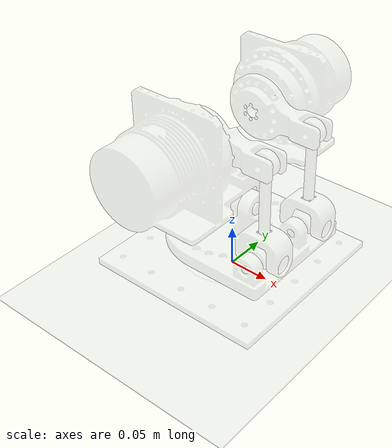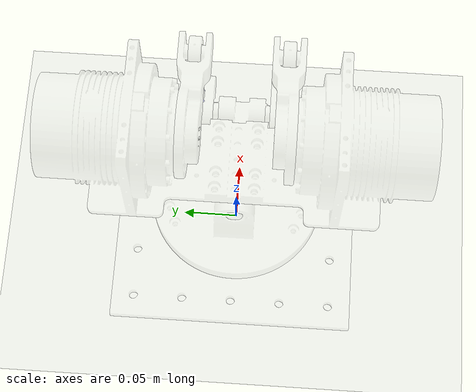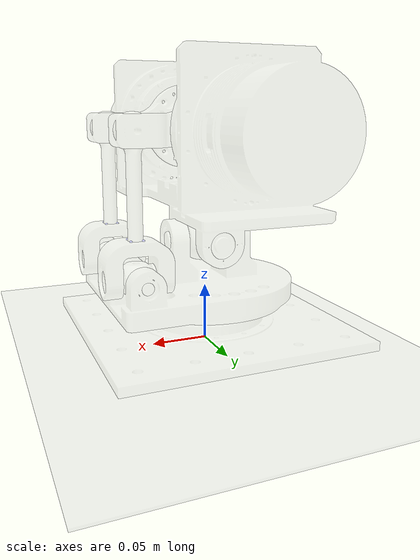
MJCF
<mujoco model="torso_mechanism">

    <compiler meshdir="torso_RSU_stl"/>
    <option gravity="0 0 -9.81" timestep="0.001" integrator="RK4" iterations="500" tolerance="1e-20"/>

    <statistic center="0 0 0.1" extent="1.5"/>

    <default>
        <geom rgba="0.75 0.76 0.78 0.1" solref="0.5 0.5" solimp="0.5 0.5 0.001 5 3"/>
        <mesh scale="0.001 0.001 0.001" />
        <joint damping="0.01"/>
        <site type="sphere" size="0.00125" rgba="0 0 1 0.1"/>
    </default>

    <visual>
        <map force="1" zfar="20	"/>
        <global elevation="-30" azimuth="210" fovy="15"/>
    </visual>

    <asset>
        <texture type="skybox" builtin="gradient" rgb1=".3 .5 .7" rgb2="0.3 0.5 0.7" width="512" height="512"/>
        <texture name="ground plane" type="2d" builtin="checker" mark="edge" width="512" height="512" rgb1=".2 .3 .4" rgb2=".1 .2 .3" markrgb="0.5 0.5 0.5"/>

        <material name="ground plane" texture="ground plane" texrepeat="10 10" texuniform="true" reflectance="0.2"/>

        <mesh name="waist_link" file="waist_link.stl"/>
        <mesh name="base_link" file="base_link.stl"/>
        <mesh name="spider" file="spider.stl"/>
        <mesh name="torso" file="torso.stl"/>
        <mesh name="crank_1" file="crank_1.stl"/>
        <mesh name="crank_2" file="crank_2.stl"/>
        <mesh name="rod_1" file="rod_1.stl"/>
        <mesh name="rod_2" file="rod_2.stl"/>
        <mesh name="s_spider" file="s_spider.stl"/>
    </asset>

    <worldbody>
        <geom name="floor" type="box" size="1 1 0.001" pos="0 0 0" material="ground plane" condim="3"/>
        <light name="spotlight" diffuse="1 1 1" specular="0.8 0.6 0.4" pos="0 0 5"/>
        <light name="top" pos="0 0 5" mode="trackcom" castshadow="false"/>

        <body name="waist_link" euler="0 0 0" pos="0 0 -0.08778">
            <geom name="waist_link" type="mesh" mesh="waist_link"/>

            <body name="base_link" euler="0 0 0" pos="0 0 0.12778">
                <geom name="base_link" type="mesh" mesh="base_link"/>
                <inertial
                    pos="0.011793737 0 0.014036199"
                    mass="1.284"
                    fullinertia="0.0022467812 0.0027628432 0.0045827893 0 -0.000079578252 0"/>
                <joint name="Yaw" type="hinge" pos="0 0 0" axis="0 0 1" range="-180 180" />

                <!-- Main Branch 1 -->
                <body name="spider" euler="0 0 0" pos="0 0 0.054">
                    <geom name="spider" type="mesh" mesh="spider"/>
                    <inertial
                        pos="0 7.7650281e-07 -3.5314178e-05"
                        mass="0.167"
                        diaginertia="0.000065885437 0.000035631377 0.000080152333"/>
                    <joint name="Roll" type="hinge" pos="0 0 0" axis="1 0 0" range="-15 15" />
                    <body name="torso" euler="0 0 0" pos="0 0 0">
                        <geom name="torso" type="mesh" mesh="torso"/>
                        <inertial
                            pos="0 0 0.086551020"
                            mass="4.56"
                            fullinertia="0.054997148 0.0073533371 0.053090282 -0.0000043882031 0 0"/>
                        <joint name="Pitch" type="hinge" pos="0 0 0" axis="0 1 0" range="-25 25" />
                        <body name="crank1" euler="0 0 0" pos="0 0.04 0.095 ">
                            <geom name="crank1" type="mesh" mesh="crank_1" />
                            <inertial
                                pos="0.029180884 0.00027909838 0"
                                mass="0.139"
                                fullinertia="0.000035565424 0.00018429955 0.00016095719 -0.000000095556741 0 0"/>
                            <joint name="Joint_18" type="hinge" pos="0 0 0" axis="0 1 0" />
                            <body name="rod1" euler="0 0 0" pos="0.075 0 0" >
                                <geom name="rod1" type="mesh" mesh="rod_1"  contype="0" conaffinity="0"/>
                                <inertial
                                    pos="0 0.000074522315 -0.032188469"
                                    mass="0.0306"
                                    fullinertia="0.000024255706 0.000024864733 0.0000011656266 0 0 -0.000000073510536"/>
                                <joint name="Spherical_Joint_1" type="ball" />
                                <site name="a1" pos="0.005 0.005 -0.084"/>
                                <site name="b1" pos="-0.005 0.005 -0.084"/>
                                <site name="c1" pos="-0.005 -0.005 -0.084"/>
                                <site name="d1" pos="0.005 -0.005 -0.084"/>
                            </body>
                        </body>
                        <body name="crank2" euler="0 0 0" pos="0 -0.04 0.095 ">
                            <geom name="crank2" type="mesh" mesh="crank_2" />
                            <inertial
                                pos="0.029180884 0.00027909838 0"
                                mass="0.139"
                                fullinertia="0.000035565424 0.00018429955 0.00016095719 -0.000000095556741 0 0"/>
                            <joint name="Joint_19" type="hinge" pos="0 0 0" axis="0 1 0" />
                            <body name="rod2" euler="0 0 0" pos="0.075 0 0">
                                <geom name="rod2" type="mesh" mesh="rod_1"  contype="0" conaffinity="0"/>
                                <inertial
                                    pos="0 0.000074522315 -0.032188469"
                                    mass="0.0306"
                                    fullinertia="0.000024255706 0.000024864733 0.0000011656266 0 0 -0.000000073510536"/>
                                <joint name="Spherical_Joint_2" type="ball" />
                                <site name="a2" pos="0.005 0.005 -0.084"/>
                                <site name="b2" pos="-0.005 0.005 -0.084"/>
                                <site name="c2" pos="-0.005 -0.005 -0.084"/>
                                <site name="d2" pos="0.005 -0.005 -0.084"/>
                            </body>
                        </body>
                    </body>
                </body>

                <!-- Main Branch 2 -->
                <body name="s_spider1" euler="0 0 0" pos="0.075 0.04 0.034">
                    <geom name="s_spider1" type="mesh" mesh="s_spider"/>
                    <inertial
                        pos="0 0 -3.3412167e-05"
                        mass="0.0625"
                        diaginertia="0.0000090956111 0.000010842278 0.000015900370"/>
                    <joint name="UJ1_pitch" type="hinge" pos="0 0 0" axis="0 1 0" />
                    <body name="rod_1" euler="0 0 0" pos="0 0 0">
                        <joint name="UJ1_roll" type="hinge" pos="0 0 0" axis="1 0 0" />
                        <inertial
                            pos="0 0 0.016234461"
                            mass="0.0676"
                            diaginertia="0.000014017289 0.000030081665 0.000026288872"/>
                        <geom name="rod_1" type="mesh" mesh="rod_2" contype="0" conaffinity="0"/>
                        <site name="e1" pos="0.005 0.005 0.031"/>
                        <site name="f1" pos="-0.005 0.005 0.031"/>
                        <site name="g1" pos="-0.005 -0.005 0.031"/>
                        <site name="h1" pos="0.005 -0.005 0.031"/>
                    </body>
                </body>

                <!-- Main Branch 3 -->
                <body name="s_spider2" euler="0 0 0" pos="0.075 -0.04 0.034">
                    <geom name="s_spider2" type="mesh" mesh="s_spider"/>
                    <inertial
                        pos="0 0 -3.3412167e-05"
                        mass="0.0625"
                        diaginertia="0.0000090956111 0.000010842278 0.000015900370"/>
                    <joint name="UJ2_pitch" type="hinge" pos="0 0 0" axis="0 1 0" />
                    <body name="rod_2" euler="0 0 0" pos="0 0 0">
                        <joint name="UJ2_roll" type="hinge" pos="0 0 0" axis="1 0 0" />
                        <geom name="rod_2" type="mesh" mesh="rod_2" contype="0" conaffinity="0"/>
                        <inertial
                            pos="0 0 0.016234461"
                            mass="0.0676"
                            diaginertia="0.000014017289 0.000030081665 0.000026288872"/>
                        <site name="e2" pos="0.005 0.005 0.031"/>
                        <site name="f2" pos="-0.005 0.005 0.031"/>
                        <site name="g2" pos="-0.005 -0.005 0.031"/>
                        <site name="h2" pos="0.005 -0.005 0.031"/>
                    </body>
                </body>

            </body>
        </body>
    </worldbody>

    <equality>
        <weld site1="a1" site2="e1"/>
        <weld site1="b1" site2="f1"/>
        <weld site1="c1" site2="g1"/>
        <weld site1="d1" site2="h1"/>
        <weld site1="a2" site2="e2"/>
        <weld site1="b2" site2="f2"/>
        <weld site1="c2" site2="g2"/>
        <weld site1="d2" site2="h2"/>
    </equality>

    <actuator>
        <position name="Roll" joint="Roll" kp="150" kv="10" ctrlrange="-0.26179 0.26179"/>
        <position name="Pitch" joint="Pitch" kp="150" kv="10" ctrlrange="-0.349066 0.349066"/>
        <position name="Yaw" joint="Yaw" kp="800" kv="120" ctrlrange="-1.57080 1.57080"/>
    </actuator>

    <sensor>
        <!-- Position sensors -->
        <jointpos name="joint18_position" joint="Joint_18" />
        <jointpos name="joint19_position" joint="Joint_19" />
        <!-- Torque sensors -->
        <jointactuatorfrc name="tau18" joint="Joint_18"/>
        <jointactuatorfrc name="tau19" joint="Joint_19"/>
        <jointactuatorfrc name="tau19_Yaw" joint="Yaw"/>

    </sensor>

</mujoco>
